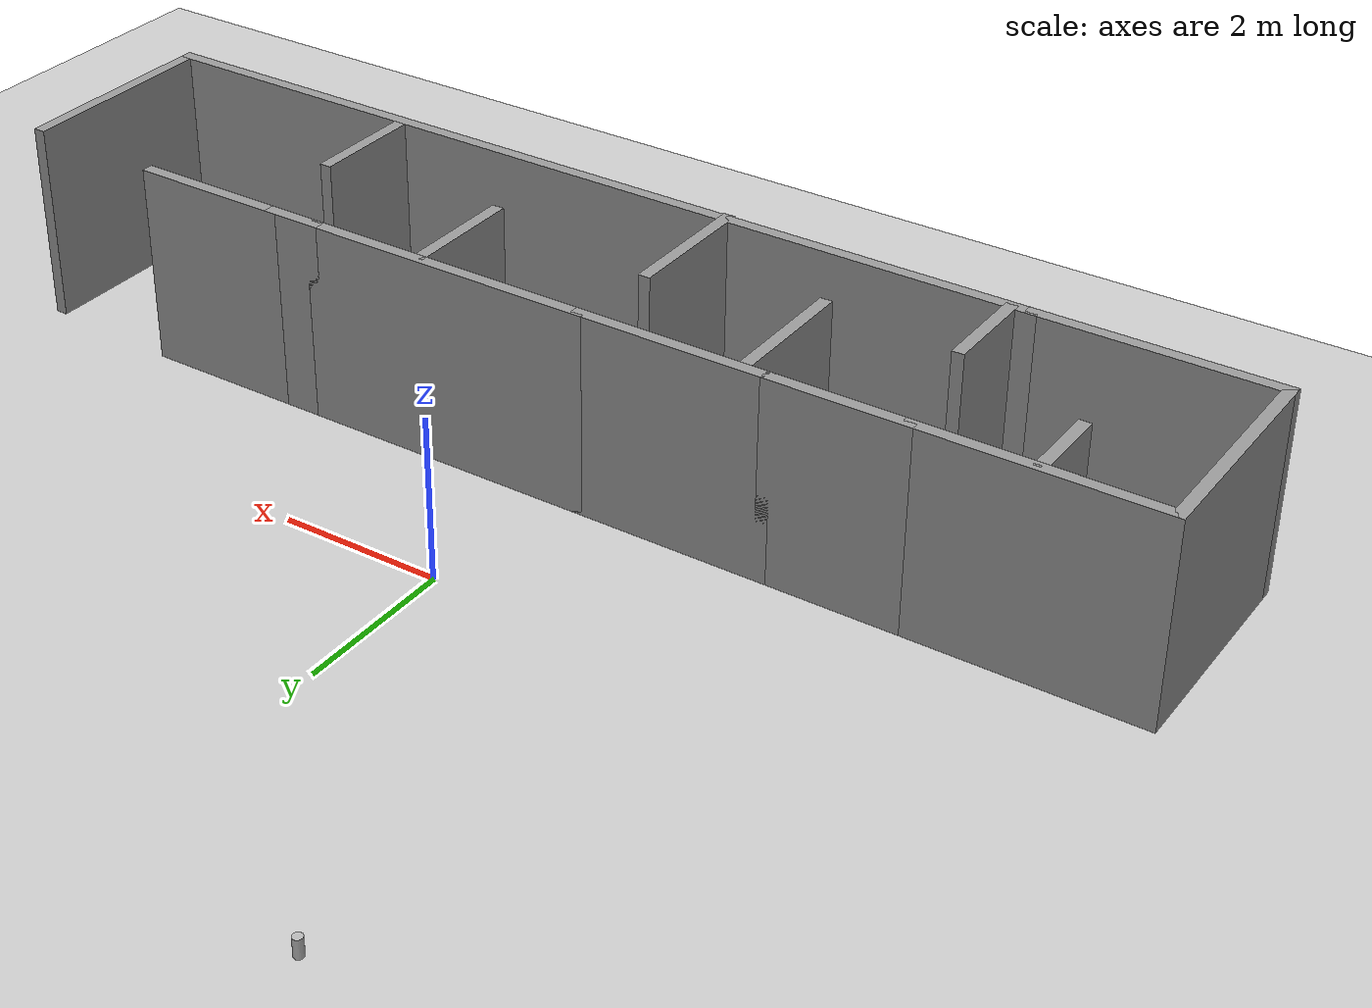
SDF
<sdf version="1.7">
 <world name="default">
  <light name="sun" type="directional">
   <pose>0 0 10 0 -0 0</pose>
   <diffuse>0.8 0.8 0.8 1</diffuse>
   <specular>0.2 0.2 0.2 1</specular>
   <attenuation>
    <range>1000</range>
    <constant>0.9</constant>
    <linear>0.01</linear>
    <quadratic>0.001</quadratic>
   </attenuation>
   <direction>-0.5 0.1 -0.9</direction>
   <spot><inner_angle>0</inner_angle><outer_angle>0</outer_angle><falloff>0</falloff></spot>
  </light>
  <model name="ground_plane">
   <static>1</static>
   <link name="link">
    <collision name="collision">
     <geometry><plane><normal>0 0 1</normal><size>100 100</size></plane></geometry>
     <surface>
      <contact><collide_bitmask>65535</collide_bitmask></contact>
      <friction><ode><mu>100</mu><mu2>50</mu2></ode></friction>
     </surface>
    </collision>
    <visual name="visual">
     <cast_shadows>0</cast_shadows>
     <geometry><plane><normal>0 0 1</normal><size>100 100</size></plane></geometry>
     <material>
      <script><uri>file://media/materials/scripts/gazebo.material</uri><name>Gazebo/Grey</name></script>
     </material>
    </visual>
   </link>
  </model>
  <physics type="ode">
   <max_step_size>0.01</max_step_size>
   <real_time_factor>1</real_time_factor>
   <real_time_update_rate>100</real_time_update_rate>
  </physics>
  <gravity>0 0 -9.8</gravity>
  <magnetic_field>6e-06 2.3e-05 -4.2e-05</magnetic_field>
  <atmosphere type="adiabatic"/>
  <scene><ambient>0.4 0.4 0.4 1</ambient><background>0.7 0.7 0.7 1</background><shadows>1</shadows></scene>
  <spherical_coordinates>
   <surface_model>EARTH_WGS84</surface_model>
   <latitude_deg>0</latitude_deg>
   <longitude_deg>0</longitude_deg>
   <elevation>0</elevation>
   <heading_deg>0</heading_deg>
  </spherical_coordinates>
  <model name="beer">
   <link name="link">
    <pose>0 0 0.115 0 -0 0</pose>
    <inertial>
     <mass>0.39</mass>
     <inertia><ixx>0.00058</ixx><ixy>0</ixy><ixz>0</ixz><iyy>0.00058</iyy><iyz>0</iyz><izz>0.00019</izz></inertia>
    </inertial>
    <collision name="collision">
     <geometry><cylinder><radius>0.055</radius><length>0.23</length></cylinder></geometry>
    </collision>
    <visual name="visual">
     <geometry><cylinder><radius>0.055</radius><length>0.23</length></cylinder></geometry>
     <material>
      <script>
       <uri>model://beer/materials/scripts</uri>
       <uri>model://beer/materials/textures</uri>
       <name>Beer/Diffuse</name>
      </script>
     </material>
    </visual>
   </link>
   <pose>-2.50792 5.1844 -0.00088 5e-05 -9e-06 -0.002081</pose>
  </model>
  <model name="corridor">
   <pose>0.02 -2.3775 0 0 -0 0</pose>
   <link name="Wall_1">
    <collision name="Wall_1_Collision">
     <geometry><box><size>1.75 0.15 2.5</size></box></geometry>
     <pose>0 0 1.25 0 -0 0</pose>
    </collision>
    <visual name="Wall_1_Visual">
     <pose>0 0 1.25 0 -0 0</pose>
     <geometry><box><size>1.75 0.15 2.5</size></box></geometry>
     <material>
      <script><uri>file://media/materials/scripts/gazebo.material</uri><name>Gazebo/Grey</name></script>
      <ambient>1 1 1 1</ambient>
     </material>
     <meta><layer>0</layer></meta>
    </visual>
    <pose>-3.7 0.4175 0 0 -0 0</pose>
   </link>
   <link name="Wall_11">
    <collision name="Wall_11_Collision">
     <geometry><box><size>3 0.15 2.5</size></box></geometry>
     <pose>0 0 1.25 0 -0 0</pose>
    </collision>
    <visual name="Wall_11_Visual">
     <pose>0 0 1.25 0 -0 0</pose>
     <geometry><box><size>3 0.15 2.5</size></box></geometry>
     <material>
      <script><uri>file://media/materials/scripts/gazebo.material</uri><name>Gazebo/Grey</name></script>
      <ambient>1 1 1 1</ambient>
     </material>
     <meta><layer>0</layer></meta>
    </visual>
    <pose>-5.925 0.4175 0 0 -0 3.14159</pose>
   </link>
   <link name="Wall_16">
    <collision name="Wall_16_Collision">
     <geometry><box><size>3 0.15 2.5</size></box></geometry>
     <pose>0 0 1.25 0 -0 0</pose>
    </collision>
    <visual name="Wall_16_Visual">
     <pose>0 0 1.25 0 -0 0</pose>
     <geometry><box><size>3 0.15 2.5</size></box></geometry>
     <material>
      <script><uri>file://media/materials/scripts/gazebo.material</uri><name>Gazebo/Grey</name></script>
      <ambient>1 1 1 1</ambient>
     </material>
     <meta><layer>0</layer></meta>
    </visual>
    <pose>-5.925 -2.2825 0 0 -0 3.14159</pose>
   </link>
   <link name="Wall_17">
    <collision name="Wall_17_Collision">
     <geometry><box><size>2.85 0.15 2.5</size></box></geometry>
     <pose>0 0 1.25 0 -0 0</pose>
    </collision>
    <visual name="Wall_17_Visual">
     <pose>0 0 1.25 0 -0 0</pose>
     <geometry><box><size>2.85 0.15 2.5</size></box></geometry>
     <material>
      <script><uri>file://media/materials/scripts/gazebo.material</uri><name>Gazebo/Grey</name></script>
      <ambient>1 1 1 1</ambient>
     </material>
     <meta><layer>0</layer></meta>
    </visual>
    <pose>-7.35 -0.9325 0 0 -0 1.5708</pose>
   </link>
   <link name="Wall_19">
    <collision name="Wall_19_Collision">
     <geometry><box><size>1 0.15 2.5</size></box></geometry>
     <pose>0 0 1.25 0 -0 0</pose>
    </collision>
    <visual name="Wall_19_Visual">
     <pose>0 0 1.25 0 -0 0</pose>
     <geometry><box><size>1 0.15 2.5</size></box></geometry>
     <material>
      <script><uri>file://media/materials/scripts/gazebo.material</uri><name>Gazebo/Grey</name></script>
      <ambient>1 1 1 1</ambient>
     </material>
     <meta><layer>0</layer></meta>
    </visual>
    <pose>-5.91 -0.0775 0 0 -0 -1.5708</pose>
   </link>
   <link name="Wall_2">
    <collision name="Wall_2_Collision">
     <geometry><box><size>2.5 0.15 2.5</size></box></geometry>
     <pose>0 0 1.25 0 -0 0</pose>
    </collision>
    <visual name="Wall_2_Visual">
     <pose>0 0 1.25 0 -0 0</pose>
     <geometry><box><size>2.5 0.15 2.5</size></box></geometry>
     <material>
      <script><uri>file://media/materials/scripts/gazebo.material</uri><name>Gazebo/Grey</name></script>
      <ambient>1 1 1 1</ambient>
     </material>
     <meta><layer>0</layer></meta>
    </visual>
    <pose>-1.725 0.4175 0 0 -0 0</pose>
   </link>
   <link name="Wall_21">
    <collision name="Wall_21_Collision">
     <geometry><box><size>1.25 0.15 2.5</size></box></geometry>
     <pose>0 0 1.25 0 -0 0</pose>
    </collision>
    <visual name="Wall_21_Visual">
     <pose>0 0 1.25 0 -0 0</pose>
     <geometry><box><size>1.25 0.15 2.5</size></box></geometry>
     <material>
      <script><uri>file://media/materials/scripts/gazebo.material</uri><name>Gazebo/Grey</name></script>
      <ambient>1 1 1 1</ambient>
     </material>
     <meta><layer>0</layer></meta>
    </visual>
    <pose>-4.25 -1.6925 0 0 -0 -1.5708</pose>
   </link>
   <link name="Wall_23">
    <collision name="Wall_23_Collision">
     <geometry><box><size>1.75 0.15 2.5</size></box></geometry>
     <pose>0 0 1.25 0 -0 0</pose>
    </collision>
    <visual name="Wall_23_Visual">
     <pose>0 0 1.25 0 -0 0</pose>
     <geometry><box><size>1.75 0.15 2.5</size></box></geometry>
     <material>
      <script><uri>file://media/materials/scripts/gazebo.material</uri><name>Gazebo/Grey</name></script>
      <ambient>1 1 1 1</ambient>
     </material>
     <meta><layer>0</layer></meta>
    </visual>
    <pose>-2.57 -0.4125 0 0 -0 -1.5708</pose>
   </link>
   <link name="Wall_25">
    <collision name="Wall_25_Collision">
     <geometry><box><size>1.75 0.15 2.5</size></box></geometry>
     <pose>0 0 1.25 0 -0 0</pose>
    </collision>
    <visual name="Wall_25_Visual">
     <pose>0 0 1.25 0 -0 0</pose>
     <geometry><box><size>1.75 0.15 2.5</size></box></geometry>
     <material>
      <script><uri>file://media/materials/scripts/gazebo.material</uri><name>Gazebo/Grey</name></script>
      <ambient>1 1 1 1</ambient>
     </material>
     <meta><layer>0</layer></meta>
    </visual>
    <pose>-0.68 -1.5025 0 0 -0 -1.5708</pose>
   </link>
   <link name="Wall_28">
    <collision name="Wall_28_Collision">
     <geometry><box><size>1.5 0.15 2.5</size></box></geometry>
     <pose>0 0 1.25 0 -0 0</pose>
    </collision>
    <visual name="Wall_28_Visual">
     <pose>0 0 1.25 0 -0 0</pose>
     <geometry><box><size>1.5 0.15 2.5</size></box></geometry>
     <material>
      <script><uri>file://media/materials/scripts/gazebo.material</uri><name>Gazebo/Grey</name></script>
      <ambient>1 1 1 1</ambient>
     </material>
     <meta><layer>0</layer></meta>
    </visual>
    <pose>1.6 -0.3275 0 0 -0 -1.5708</pose>
   </link>
   <link name="Wall_3">
    <collision name="Wall_3_Collision">
     <geometry><box><size>3.75 0.15 2.5</size></box></geometry>
     <pose>0 0 1.25 0 -0 0</pose>
    </collision>
    <visual name="Wall_3_Visual">
     <pose>0 0 1.25 0 -0 0</pose>
     <geometry><box><size>3.75 0.15 2.5</size></box></geometry>
     <material>
      <script><uri>file://media/materials/scripts/gazebo.material</uri><name>Gazebo/Grey</name></script>
      <ambient>1 1 1 1</ambient>
     </material>
     <meta><layer>0</layer></meta>
    </visual>
    <pose>1.25 0.4175 0 0 -0 0</pose>
   </link>
   <link name="Wall_30">
    <collision name="Wall_30_Collision">
     <geometry><box><size>1.5 0.15 2.5</size></box></geometry>
     <pose>0 0 1.25 0 -0 0</pose>
    </collision>
    <visual name="Wall_30_Visual">
     <pose>0 0 1.25 0 -0 0</pose>
     <geometry><box><size>1.5 0.15 2.5</size></box></geometry>
     <material>
      <script><uri>file://media/materials/scripts/gazebo.material</uri><name>Gazebo/Grey</name></script>
      <ambient>1 1 1 1</ambient>
     </material>
     <meta><layer>0</layer></meta>
    </visual>
    <pose>3.9 -1.5475 0 0 -0 -1.5708</pose>
   </link>
   <link name="Wall_4">
    <collision name="Wall_4_Collision">
     <geometry><box><size>0.75 0.15 2.5</size></box></geometry>
     <pose>0 0 1.25 0 -0 0</pose>
    </collision>
    <visual name="Wall_4_Visual">
     <pose>0 0 1.25 0 -0 0</pose>
     <geometry><box><size>0.75 0.15 2.5</size></box></geometry>
     <material>
      <script><uri>file://media/materials/scripts/gazebo.material</uri><name>Gazebo/Grey</name></script>
      <ambient>1 1 1 1</ambient>
     </material>
     <meta><layer>0</layer></meta>
    </visual>
    <pose>3.35 0.4175 0 0 -0 0</pose>
   </link>
   <link name="Wall_5">
    <collision name="Wall_5_Collision">
     <geometry><box><size>2 0.15 2.5</size></box></geometry>
     <pose>0 0 1.25 0 -0 0</pose>
    </collision>
    <visual name="Wall_5_Visual">
     <pose>0 0 1.25 0 -0 0</pose>
     <geometry><box><size>2 0.15 2.5</size></box></geometry>
     <material>
      <script><uri>file://media/materials/scripts/gazebo.material</uri><name>Gazebo/Grey</name></script>
      <ambient>1 1 1 1</ambient>
     </material>
     <meta><layer>0</layer></meta>
    </visual>
    <pose>4.575 0.4175 0 0 -0 0</pose>
   </link>
   <link name="Wall_8">
    <collision name="Wall_8_Collision">
     <geometry><box><size>12 0.15 2.5</size></box></geometry>
     <pose>0 0 1.25 0 -0 0</pose>
    </collision>
    <visual name="Wall_8_Visual">
     <pose>0 0 1.25 0 -0 0</pose>
     <geometry><box><size>12 0.15 2.5</size></box></geometry>
     <material>
      <script><uri>file://media/materials/scripts/gazebo.material</uri><name>Gazebo/Grey</name></script>
      <ambient>1 1 1 1</ambient>
     </material>
     <meta><layer>0</layer></meta>
    </visual>
    <pose>1.425 -2.2825 0 0 -0 0</pose>
   </link>
   <link name="Wall_9">
    <collision name="Wall_9_Collision">
     <geometry><box><size>2.75 0.15 2.5</size></box></geometry>
     <pose>0 0 1.25 0 -0 0</pose>
    </collision>
    <visual name="Wall_9_Visual">
     <pose>0 0 1.25 0 -0 0</pose>
     <geometry><box><size>2.75 0.15 2.5</size></box></geometry>
     <material>
      <script><uri>file://media/materials/scripts/gazebo.material</uri><name>Gazebo/Grey</name></script>
      <ambient>1 1 1 1</ambient>
     </material>
     <meta><layer>0</layer></meta>
    </visual>
    <pose>7.35 -0.9825 0 0 -0 1.5708</pose>
   </link>
   <static>1</static>
  </model>
 </world>
</sdf>
